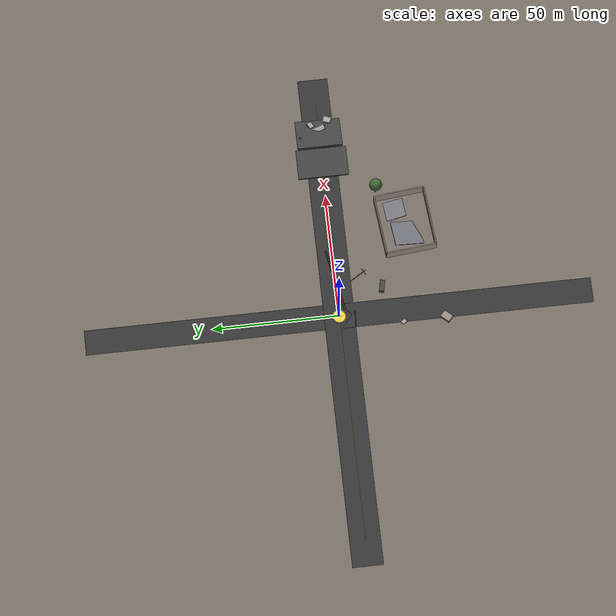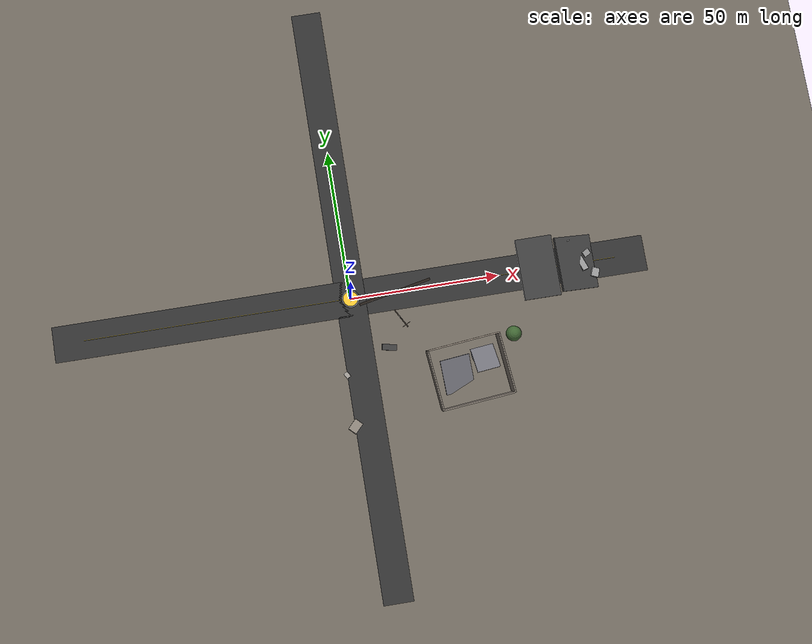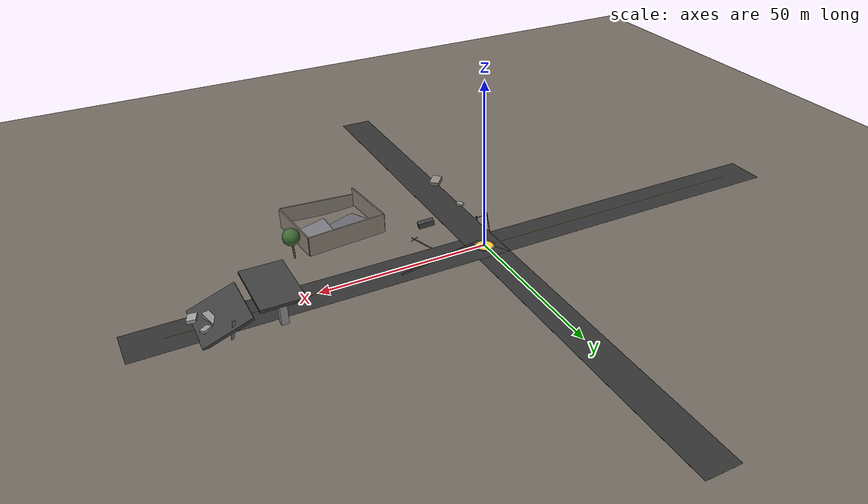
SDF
<sdf version="1.9">
 <world name="earthquake_zone">
  <model name="ground_plane">
   <static>true</static>
   <link name="link">
    <collision name="collision">
     <geometry><plane><normal>0 0 1</normal><size>300 300</size></plane></geometry>
     <surface><friction><ode><mu>100</mu><mu2>50</mu2></ode></friction></surface>
    </collision>
    <visual name="visual">
     <geometry><plane><normal>0 0 1</normal><size>300 300</size></plane></geometry>
     <material>
      <ambient>0.35 0.32 0.28 1</ambient>
      <diffuse>0.45 0.42 0.38 1</diffuse>
      <specular>0.05 0.05 0.05 1</specular>
     </material>
    </visual>
   </link>
  </model>
  <model name="main_road_ew">
   <static>true</static>
   <pose>0 0 0.02 0 0 0</pose>
   <link name="link">
    <visual name="asphalt">
     <geometry><box><size>200 12 0.02</size></box></geometry>
     <material><ambient>0.15 0.15 0.15 1</ambient><diffuse>0.2 0.2 0.2 1</diffuse></material>
    </visual>
    <visual name="center_line">
     <pose>0 0 0.01 0 0 0</pose>
     <geometry><box><size>180 0.15 0.01</size></box></geometry>
     <material><ambient>0.8 0.7 0.2 1</ambient><diffuse>0.9 0.8 0.3 1</diffuse></material>
    </visual>
   </link>
  </model>
  <model name="cross_road_ns">
   <static>true</static>
   <pose>0 0 0.02 0 0 1.5708</pose>
   <link name="link">
    <visual name="asphalt">
     <geometry><box><size>200 10 0.02</size></box></geometry>
     <material><ambient>0.15 0.15 0.15 1</ambient><diffuse>0.2 0.2 0.2 1</diffuse></material>
    </visual>
   </link>
  </model>
  <model name="road_crack_1">
   <static>true</static>
   <pose>15 0 0.03 0 0 0.2</pose>
   <link name="link">
    <visual name="crack">
     <geometry><box><size>25 0.8 0.15</size></box></geometry>
     <material><ambient>0.1 0.08 0.06 1</ambient><diffuse>0.15 0.12 0.1 1</diffuse></material>
    </visual>
   </link>
  </model>
  <model name="overpass_collapsed">
   <static>true</static>
   <pose>70 0 0 0 0 0</pose>
   <link name="pillar_1">
    <pose>-8 -8 3 0 0 0</pose>
    <collision name="col"><geometry><box><size>2 2 6</size></box></geometry></collision>
    <visual name="vis">
     <geometry><box><size>2 2 6</size></box></geometry>
     <material><ambient>0.5 0.5 0.5 1</ambient><diffuse>0.6 0.6 0.6 1</diffuse></material>
    </visual>
   </link>
   <link name="pillar_2">
    <pose>-8 8 3 0 0 0</pose>
    <collision name="col"><geometry><box><size>2 2 6</size></box></geometry></collision>
    <visual name="vis">
     <geometry><box><size>2 2 6</size></box></geometry>
     <material><ambient>0.5 0.5 0.5 1</ambient><diffuse>0.6 0.6 0.6 1</diffuse></material>
    </visual>
   </link>
   <link name="pillar_fallen">
    <pose>8 0 1 1.4 0 0.3</pose>
    <collision name="col"><geometry><box><size>2 2 6</size></box></geometry></collision>
    <visual name="vis">
     <geometry><box><size>2 2 6</size></box></geometry>
     <material><ambient>0.48 0.48 0.48 1</ambient><diffuse>0.58 0.58 0.58 1</diffuse></material>
    </visual>
   </link>
   <link name="deck_standing">
    <pose>-8 0 6.5 0 0 0</pose>
    <collision name="col"><geometry><box><size>12 20 0.8</size></box></geometry></collision>
    <visual name="vis">
     <geometry><box><size>12 20 0.8</size></box></geometry>
     <material><ambient>0.2 0.2 0.2 1</ambient><diffuse>0.25 0.25 0.25 1</diffuse></material>
    </visual>
   </link>
   <link name="deck_collapsed">
    <pose>6 0 2 0 0.35 0</pose>
    <collision name="col"><geometry><box><size>14 18 0.8</size></box></geometry></collision>
    <visual name="vis">
     <geometry><box><size>14 18 0.8</size></box></geometry>
     <material><ambient>0.2 0.2 0.2 1</ambient><diffuse>0.25 0.25 0.25 1</diffuse></material>
    </visual>
   </link>
   <link name="guardrail_1">
    <pose>5 8 0.5 0.2 1.3 0.5</pose>
    <collision name="col"><geometry><box><size>8 0.3 0.8</size></box></geometry></collision>
    <visual name="vis">
     <geometry><box><size>8 0.3 0.8</size></box></geometry>
     <material><ambient>0.4 0.4 0.4 1</ambient><diffuse>0.5 0.5 0.5 1</diffuse></material>
    </visual>
   </link>
   <link name="chunk_1">
    <pose>10 3 0 0.2 0.1 0.5</pose>
    <collision name="col"><geometry><box><size>2.5 2 1.5</size></box></geometry></collision>
    <visual name="vis">
     <pose>0 0 0.75 0 0 0</pose>
     <geometry><box><size>2.5 2 1.5</size></box></geometry>
     <material><ambient>0.5 0.5 0.5 1</ambient><diffuse>0.6 0.6 0.6 1</diffuse></material>
    </visual>
   </link>
   <link name="chunk_2">
    <pose>12 -4 0 0.15 0.05 1.2</pose>
    <collision name="col"><geometry><box><size>3 2.5 1.2</size></box></geometry></collision>
    <visual name="vis">
     <pose>0 0 0.6 0 0 0</pose>
     <geometry><box><size>3 2.5 1.2</size></box></geometry>
     <material><ambient>0.52 0.52 0.52 1</ambient><diffuse>0.62 0.62 0.62 1</diffuse></material>
    </visual>
   </link>
  </model>
  <model name="traffic_light_tilted">
   <static>true</static>
   <pose>-5 -6 0 0 0.15 0</pose>
   <link name="pole">
    <pose>0 0 3.5 0 0 0</pose>
    <collision name="col">
     <geometry><cylinder><radius>0.1</radius><length>7</length></cylinder></geometry>
    </collision>
    <visual name="vis">
     <geometry><cylinder><radius>0.1</radius><length>7</length></cylinder></geometry>
     <material><ambient>0.25 0.25 0.25 1</ambient><diffuse>0.35 0.35 0.35 1</diffuse></material>
    </visual>
   </link>
   <link name="arm">
    <pose>2 0 6.5 0 1.57 0</pose>
    <visual name="vis">
     <geometry><cylinder><radius>0.08</radius><length>4</length></cylinder></geometry>
     <material><ambient>0.25 0.25 0.25 1</ambient><diffuse>0.35 0.35 0.35 1</diffuse></material>
    </visual>
   </link>
   <link name="signal_box">
    <pose>3.5 0 6.5 0 0 0</pose>
    <visual name="vis">
     <geometry><box><size>0.4 0.4 1.2</size></box></geometry>
     <material><ambient>0.15 0.15 0.15 1</ambient><diffuse>0.2 0.2 0.2 1</diffuse></material>
    </visual>
    <visual name="red_light">
     <pose>0.21 0 0.35 0 1.57 0</pose>
     <geometry><cylinder><radius>0.12</radius><length>0.05</length></cylinder></geometry>
     <material><ambient>0.3 0.1 0.1 1</ambient><diffuse>0.4 0.15 0.15 1</diffuse></material>
    </visual>
   </link>
  </model>
  <model name="warehouse">
   <static>true</static>
   <pose>35 -30 0 0 0 0.1</pose>
   <link name="wall_north">
    <pose>0 10 3 0 0 0</pose>
    <collision name="col"><geometry><box><size>24 0.4 6</size></box></geometry></collision>
    <visual name="vis">
     <geometry><box><size>24 0.4 6</size></box></geometry>
     <material>
      <ambient>0.5 0.45 0.4 1</ambient>
      <diffuse>0.6 0.55 0.5 1</diffuse>
      <pbr><metal><roughness>0.9</roughness><metalness>0.15</metalness></metal></pbr>
      <specular>0.3 0.3 0.3 1</specular>
     </material>
    </visual>
   </link>
   <link name="wall_south">
    <pose>0 -10 2.5 0 -0.1 0</pose>
    <collision name="col"><geometry><box><size>24 0.4 5</size></box></geometry></collision>
    <visual name="vis">
     <geometry><box><size>24 0.4 5</size></box></geometry>
     <material>
      <ambient>0.48 0.44 0.4 1</ambient>
      <diffuse>0.58 0.54 0.5 1</diffuse>
      <pbr><metal><roughness>0.9</roughness><metalness>0.15</metalness></metal></pbr>
      <specular>0.3 0.3 0.3 1</specular>
     </material>
    </visual>
   </link>
   <link name="wall_east">
    <pose>12 0 3 0 0 0</pose>
    <collision name="col"><geometry><box><size>0.4 20 6</size></box></geometry></collision>
    <visual name="vis">
     <geometry><box><size>0.4 20 6</size></box></geometry>
     <material>
      <ambient>0.5 0.46 0.42 1</ambient>
      <diffuse>0.6 0.56 0.52 1</diffuse>
      <pbr><metal><roughness>0.9</roughness><metalness>0.15</metalness></metal></pbr>
      <specular>0.3 0.3 0.3 1</specular>
     </material>
    </visual>
   </link>
   <link name="wall_west">
    <pose>-12 0 3 0 0 0</pose>
    <collision name="col"><geometry><box><size>0.4 20 6</size></box></geometry></collision>
    <visual name="vis">
     <geometry><box><size>0.4 20 6</size></box></geometry>
     <material>
      <ambient>0.5 0.46 0.42 1</ambient>
      <diffuse>0.6 0.56 0.52 1</diffuse>
      <pbr><metal><roughness>0.9</roughness><metalness>0.15</metalness></metal></pbr>
      <specular>0.3 0.3 0.3 1</specular>
     </material>
    </visual>
   </link>
   <link name="roof_collapsed_1">
    <pose>-4 0 1 0.3 0.1 0</pose>
    <collision name="col"><geometry><box><size>10 12 0.3</size></box></geometry></collision>
    <visual name="vis">
     <geometry><box><size>10 12 0.3</size></box></geometry>
     <material>
      <ambient>0.35 0.35 0.38 1</ambient>
      <diffuse>0.45 0.45 0.48 1</diffuse>
      <pbr><metal><roughness>0.9</roughness><metalness>0.15</metalness></metal></pbr>
      <specular>0.3 0.3 0.3 1</specular>
     </material>
    </visual>
   </link>
   <link name="roof_collapsed_2">
    <pose>6 3 2.5 -0.2 0.15 0</pose>
    <collision name="col"><geometry><box><size>8 8 0.3</size></box></geometry></collision>
    <visual name="vis">
     <geometry><box><size>8 8 0.3</size></box></geometry>
     <material>
      <ambient>0.35 0.35 0.38 1</ambient>
      <diffuse>0.45 0.45 0.48 1</diffuse>
      <pbr><metal><roughness>0.9</roughness><metalness>0.15</metalness></metal></pbr>
      <specular>0.3 0.3 0.3 1</specular>
     </material>
    </visual>
   </link>
  </model>
  <model name="rubble_debris_1">
   <static>true</static>
   <pose>-5 -42 0 0 0.15 0.8</pose>
   <link name="debris">
    <collision name="col"><geometry><box><size>4 3 1.5</size></box></geometry></collision>
    <visual name="vis">
     <pose>0 0 0.75 0 0 0</pose>
     <geometry><box><size>4 3 1.5</size></box></geometry>
     <material>
      <ambient>0.45 0.42 0.38 1</ambient>
      <diffuse>0.55 0.52 0.48 1</diffuse>
      <specular>0.3 0.3 0.3 1</specular>
      <pbr><metal><roughness>0.9</roughness><metalness>0.05</metalness></metal></pbr>
     </material>
    </visual>
   </link>
  </model>
  <model name="victim_2">
   <static>true</static>
   <pose>32 -28 0.5 1.4 0.3 0</pose>
   <link name="body">
    <visual name="torso">
     <geometry><box><size>0.5 0.3 0.8</size></box></geometry>
     <material><ambient>0.2 0.3 0.6 1</ambient><diffuse>0.3 0.4 0.7 1</diffuse></material>
    </visual>
    <visual name="head">
     <pose>0 0 0.55 0 0 0</pose>
     <geometry><sphere><radius>0.12</radius></sphere></geometry>
     <material><ambient>0.8 0.65 0.5 1</ambient><diffuse>0.9 0.75 0.6 1</diffuse></material>
    </visual>
    <visual name="aruco_marker">
     <pose>0 0.16 0 0 0 0</pose>
     <geometry><box><size>0.2 0.01 0.2</size></box></geometry>
     <material><ambient>0.9 0.9 0.9 1</ambient><diffuse>1 1 1 1</diffuse></material>
    </visual>
    <visual name="marker_pattern_2">
     <pose>0.04 0.165 0.04 0 0 0</pose>
     <geometry><box><size>0.06 0.005 0.06</size></box></geometry>
     <material><ambient>0.1 0.1 0.1 1</ambient><diffuse>0.15 0.15 0.15 1</diffuse></material>
    </visual>
   </link>
  </model>
  <model name="suv_damaged">
   <static>true</static>
   <pose>10 -18 0.3 0 0.15 -0.2</pose>
   <link name="body">
    <collision name="col">
     <pose>0 0 0.8 0 0 0</pose>
     <geometry><box><size>4.8 2 1.6</size></box></geometry>
    </collision>
    <visual name="vis">
     <pose>0 0 0.8 0 0 0</pose>
     <geometry><box><size>4.8 2 1.6</size></box></geometry>
     <material><ambient>0.2 0.2 0.2 1</ambient><diffuse>0.25 0.25 0.25 1</diffuse></material>
    </visual>
   </link>
  </model>
  <model name="concrete_chunk_3">
   <static>true</static>
   <pose>-5 -25 0 0 0.1 2.1</pose>
   <link name="link">
    <collision name="col"><geometry><box><size>2 1.5 0.7</size></box></geometry></collision>
    <visual name="vis">
     <pose>0 0 0.35 0 0 0</pose>
     <geometry><box><size>2 1.5 0.7</size></box></geometry>
     <material><ambient>0.52 0.5 0.48 1</ambient><diffuse>0.62 0.6 0.58 1</diffuse></material>
    </visual>
   </link>
  </model>
  <model name="power_pole_down">
   <static>true</static>
   <pose>15 -8 0.3 1.4 0 0.5</pose>
   <link name="pole">
    <collision name="col">
     <geometry><cylinder><radius>0.15</radius><length>10</length></cylinder></geometry>
    </collision>
    <visual name="vis">
     <geometry><cylinder><radius>0.15</radius><length>10</length></cylinder></geometry>
     <material><ambient>0.35 0.3 0.25 1</ambient><diffuse>0.45 0.4 0.35 1</diffuse></material>
    </visual>
   </link>
   <link name="crossbar">
    <pose>0 0 4 0 1.57 0</pose>
    <visual name="vis">
     <geometry><cylinder><radius>0.08</radius><length>3</length></cylinder></geometry>
     <material><ambient>0.35 0.3 0.25 1</ambient><diffuse>0.45 0.4 0.35 1</diffuse></material>
    </visual>
   </link>
   <link name="wire1">
    <pose>0 1 2 0.8 0.2 0</pose>
    <visual name="vis">
     <geometry><cylinder><radius>0.02</radius><length>4</length></cylinder></geometry>
     <material><ambient>0.1 0.1 0.1 1</ambient><diffuse>0.15 0.15 0.15 1</diffuse></material>
    </visual>
   </link>
  </model>
  <model name="landing_pad">
   <static>true</static>
   <pose>0 0 0.03 0 0 0</pose>
   <link name="pad">
    <collision name="col">
     <geometry><cylinder><radius>3</radius><length>0.05</length></cylinder></geometry>
    </collision>
    <visual name="base">
     <geometry><cylinder><radius>3</radius><length>0.05</length></cylinder></geometry>
     <material><ambient>0.3 0.3 0.3 1</ambient><diffuse>0.4 0.4 0.4 1</diffuse></material>
    </visual>
    <visual name="circle">
     <pose>0 0 0.03 0 0 0</pose>
     <geometry><cylinder><radius>2.5</radius><length>0.01</length></cylinder></geometry>
     <material><ambient>0.9 0.7 0.1 1</ambient><diffuse>1 0.8 0.2 1</diffuse></material>
    </visual>
    <visual name="h_bar">
     <pose>0 0 0.04 0 0 0</pose>
     <geometry><box><size>0.3 1.8 0.01</size></box></geometry>
     <material><ambient>0.9 0.9 0.9 1</ambient><diffuse>1 1 1 1</diffuse></material>
    </visual>
    <visual name="h_left">
     <pose>0 -0.7 0.04 0 0 0</pose>
     <geometry><box><size>0.3 0.4 0.01</size></box></geometry>
     <material><ambient>0.9 0.9 0.9 1</ambient><diffuse>1 1 1 1</diffuse></material>
    </visual>
    <visual name="h_right">
     <pose>0 0.7 0.04 0 0 0</pose>
     <geometry><box><size>0.3 0.4 0.01</size></box></geometry>
     <material><ambient>0.9 0.9 0.9 1</ambient><diffuse>1 1 1 1</diffuse></material>
    </visual>
   </link>
  </model>
  <model name="metal_sheet">
   <static>true</static>
   <pose>38 -25 0.8 0.4 0.2 0.3</pose>
   <link name="link">
    <visual name="sheet">
     <geometry><box><size>3 2 0.02</size></box></geometry>
     <material>
      <ambient>0.6 0.6 0.65 1</ambient>
      <diffuse>0.7 0.7 0.75 1</diffuse>
      <specular>0.9 0.9 0.9 1</specular>
     </material>
    </visual>
   </link>
  </model>
  <model name="tree_standing">
   <static>true</static>
   <pose>50 -20 0 0 0.05 0</pose>
   <link name="trunk">
    <collision name="col">
     <pose>0 0 3 0 0 0</pose>
     <geometry><cylinder><radius>0.25</radius><length>6</length></cylinder></geometry>
    </collision>
    <visual name="vis">
     <pose>0 0 3 0 0 0</pose>
     <geometry><cylinder><radius>0.25</radius><length>6</length></cylinder></geometry>
     <material><ambient>0.3 0.2 0.15 1</ambient><diffuse>0.4 0.3 0.2 1</diffuse></material>
    </visual>
   </link>
   <link name="canopy">
    <pose>0 0 7 0 0 0</pose>
    <visual name="vis">
     <geometry><sphere><radius>2.5</radius></sphere></geometry>
     <material><ambient>0.2 0.35 0.15 1</ambient><diffuse>0.25 0.4 0.2 1</diffuse></material>
    </visual>
   </link>
  </model>
  <model name="weather_rain">
   <static>true</static>
   <pose>0 0 60 0 0 0</pose>
   <link name="link">
    <particle_emitter name="rain_emitter" type="box">
     <emitting>false</emitting>
     <size>200 200 5</size>
     <particle_size>0.03 0.03 0.25</particle_size>
     <lifetime>4</lifetime>
     <min_velocity>10</min_velocity>
     <max_velocity>15</max_velocity>
     <scale_rate>0</scale_rate>
     <rate>2000</rate>
     <material><diffuse>0.6 0.6 0.8 0.5</diffuse><specular>0.8 0.8 0.9 0.5</specular></material>
     <color_start>0.5 0.5 0.7 0.4</color_start>
     <color_end>0.6 0.6 0.8 0.6</color_end>
    </particle_emitter>
   </link>
  </model>
  <model name="weather_fog">
   <static>true</static>
   <pose>0 0 8 0 0 0</pose>
   <link name="link">
    <particle_emitter name="fog_emitter" type="box">
     <emitting>false</emitting>
     <size>150 150 15</size>
     <particle_size>8 8 8</particle_size>
     <lifetime>25</lifetime>
     <min_velocity>0.2</min_velocity>
     <max_velocity>1.5</max_velocity>
     <scale_rate>0.3</scale_rate>
     <rate>15</rate>
     <material><diffuse>0.65 0.6 0.55 0.15</diffuse></material>
     <color_start>0.6 0.55 0.5 0.1</color_start>
     <color_end>0.7 0.65 0.6 0.2</color_end>
    </particle_emitter>
   </link>
  </model>
  <model name="weather_debris">
   <static>true</static>
   <pose>0 0 3 0 0 0</pose>
   <link name="link">
    <particle_emitter name="debris_emitter" type="box">
     <emitting>false</emitting>
     <size>100 100 5</size>
     <particle_size>0.1 0.1 0.1</particle_size>
     <lifetime>8</lifetime>
     <min_velocity>5</min_velocity>
     <max_velocity>12</max_velocity>
     <scale_rate>0</scale_rate>
     <rate>50</rate>
     <material><diffuse>0.4 0.35 0.3 0.7</diffuse></material>
    </particle_emitter>
   </link>
  </model>
 </world>
</sdf>
